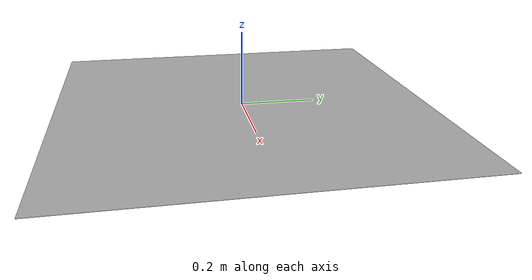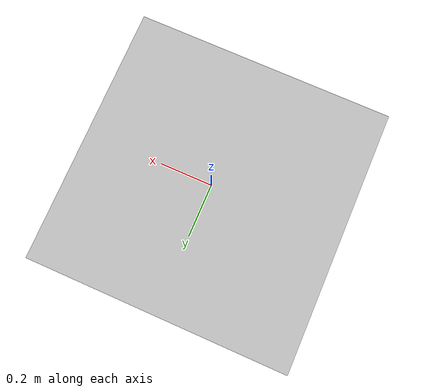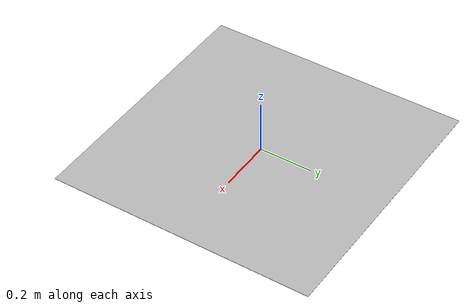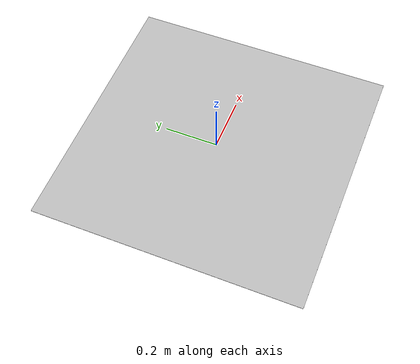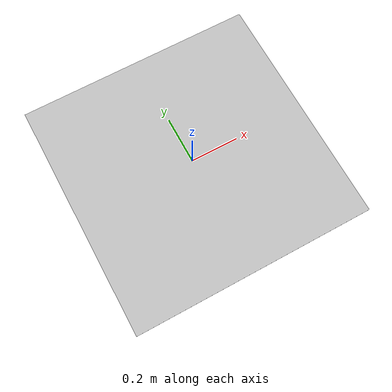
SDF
<?xml version="1.0" encoding="UTF-8" ?>
<sdf version="1.4">
  <world name="default">
    <scene>
      <ambient>0.5 0.5 0.5 1</ambient>
      <background>0.5 0.5 0.5 1</background>
      <shadows>false</shadows>
    </scene>
    <physics type="ode">
      <gravity>0 0 -9.81</gravity>
      <ode>
        <solver>
          <type>quick</type>
          <iters>10</iters>
          <sor>1.3</sor>
        </solver>
        <constraints>
          <cfm>0.0</cfm>
          <erp>0.2</erp>
          <contact_max_correcting_vel>10</contact_max_correcting_vel>
          <contact_surface_layer>0.001</contact_surface_layer>
        </constraints>
      </ode>
      <real_time_update_rate>1000</real_time_update_rate>
      <max_step_size>0.001</max_step_size>
    </physics>
    <include>
      <uri>model://sun</uri>
    </include>
    <!-- Ground Plane -->
    <model name="plane1_model">
      <link name="body">
        <collision name="geom_1">
          <geometry>
            <plane>
              <normal>0 0 1</normal>
            </plane>
          </geometry>
          <surface>
            <friction>
              <ode>
                <mu>10.0</mu>
                <mu2>10.0</mu2>
                <fdir1>0 0 0</fdir1>
                <slip1>0</slip1>
                <slip2>0</slip2>
              </ode>
            </friction>
            <bounce>
              <restitution_coefficient>0</restitution_coefficient>
              <threshold>1000000.0</threshold>
            </bounce>
            <contact>
              <ode>
                <soft_cfm>0</soft_cfm>
                <soft_erp>0.2</soft_erp>
                <kp>1e10</kp>
                <kd>1</kd>
                <max_vel>100.0</max_vel>
                <min_depth>0.0001</min_depth>
              </ode>
            </contact>
          </surface>
        </collision>
        <visual name="visual_1">
          <geometry>
            <plane>
              <normal>0 0 1</normal>
            </plane>
          </geometry>
          <material>
            <script>Gazebo/Grey</script>
          </material>
          <cast_shadows>false</cast_shadows>
        </visual>
      </link>
      <static>true</static>
    </model>
    <model name="my_world">
      <link name="my_world_link">
        <pose>10 -38 0 0 0 0</pose>
        <visual name="my_world_visual">
          <geometry>
            <mesh>
              <uri>model://road1/model.dae</uri>
              <scale>1 1 1</scale>
            </mesh>
          </geometry>
          <cast_shadows>false</cast_shadows>
        </visual>
      </link>
      <static>true</static>
    </model>
  </world>
</sdf>
